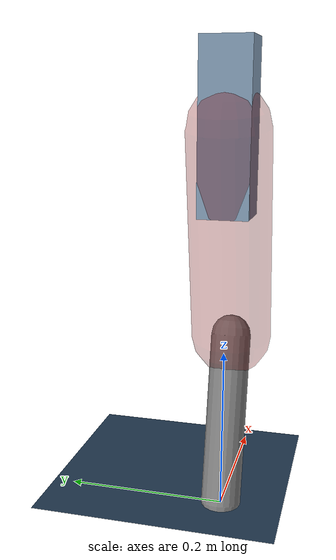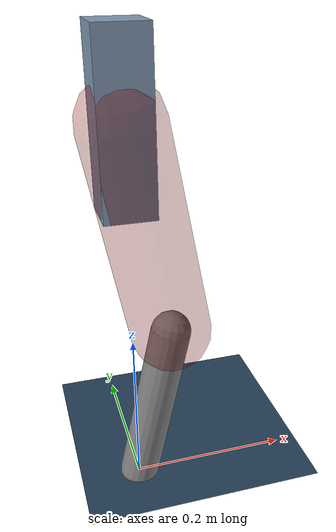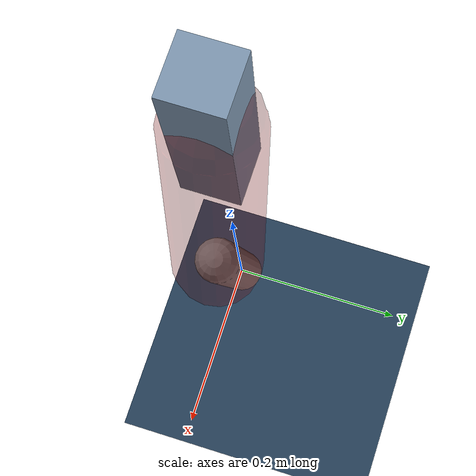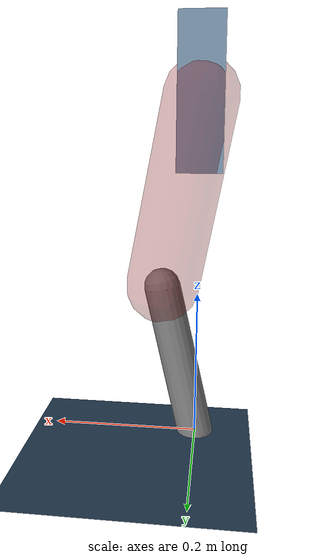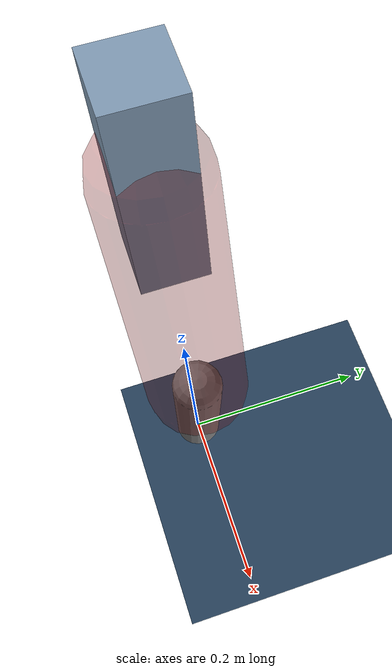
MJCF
<mujoco model="Hopper2D">
	<compiler inertiafromgeom="true" angle="radian" />
	<option timestep="0.001" integrator="implicit" cone="elliptic" solver="Newton" tolerance="1e-10" />

	<default>
		<geom contype="1" conaffinity="1" condim="3" friction="2 0.005 0.0001" solref="0.005 1" />
		<joint limited="true" damping="0.1" />
	</default>

	<asset>
		<texture name="skybox" type="skybox" builtin="gradient" rgb1=".4 .6 .8" rgb2="0 0 0" width="800" height="800" />
		<texture name="grid" type="2d" builtin="checker" rgb1=".1 .2 .3" rgb2=".2 .3 .4" width="300" height="300" mark="edge" markrgb=".2 .3 .4" />
		<material name="ground" texture="grid" texrepeat="1 1" texuniform="true" reflectance="0.1" />
		<material name="leg" rgba="0.5 0.6 0.7 1" />
	</asset>

	<worldbody>

		<geom name="floor" type="plane" size="5 5 0.25" material="ground" />

		<light directional="false" diffuse="0.8 0.8 0.8" specular="0.3 0.3 0.3" pos="0 0 2" dir="0 0 -1" />
		<light mode="targetbodycom" target="base" directional="false" diffuse="0.8 0.8 0.8" specular="0.3 0.3 0.3" pos="0 0 2" dir="0 0 -1" />

		<camera name="fixed" pos="0 -2 1" xyaxes="1 0 0 0 0 1" />
		<camera name="tracking" mode="trackcom" pos="0 -3 1" />

		<body name="root" pos="0 0 0.46762841794835236">
			<joint name="slide_x" type="slide" axis="1 0 0" range="-100 100" />
			<joint name="slide_z" type="slide" axis="0 0 1" range="0 10" />

			<body name="base" pos="0 0 0">
				<geom name="torso" type="box" size="0.03 0.03 0.1" mass="2.548" material="leg" />

				<body name="link1" pos="0 0 0" euler="0 1.3852433042010563 0">
					<joint type="hinge" axis="0 -1 0" pos="0 0 0" name="hinge1" limited="true" range="-3.14 3.14" stiffness="0" damping="0.1" />
					<geom name="thigh" type="capsule" fromto="0 0 0 0.26217611788031386 0 0" size="0.05" rgba="0.5 0 0 0.3" mass="0.8880755182768474" />

					<body name="link2" pos="0.26217611788031386 0 0" euler="0 0.41198223844660137 0">
						<joint type="hinge" axis="0 -1 0" pos="0 0 0" name="hinge2" limited="true" range="-3.14 3.14" stiffness="0" damping="0.1" />
						<geom name="shank" type="capsule" fromto="0 0 0 0.2154523000680385 0 0" size="0.025" mass="0.4138618400544308" />

					</body>
				</body>
			</body>
		</body>
	</worldbody>

	<actuator>
		<motor name="torque1" joint="hinge1" ctrlrange="-78.87146697874806 78.87146697874806" ctrllimited="true" gear="1" />
		<motor name="torque2" joint="hinge2" ctrlrange="-106.95988445732836 106.95988445732836" ctrllimited="true" gear="1" />
	</actuator>
</mujoco>
